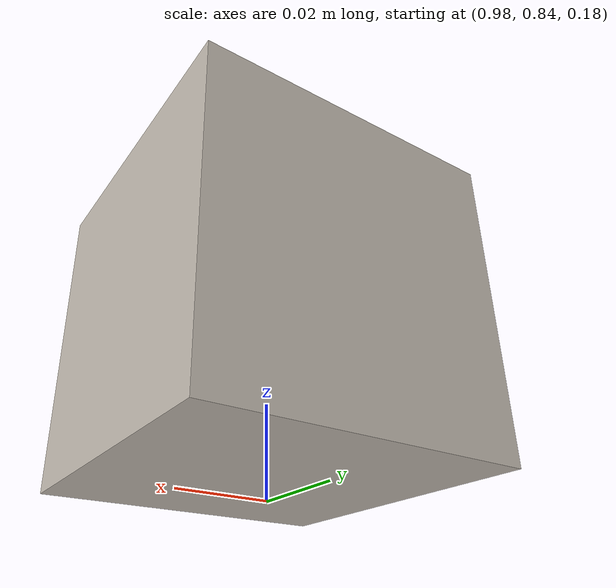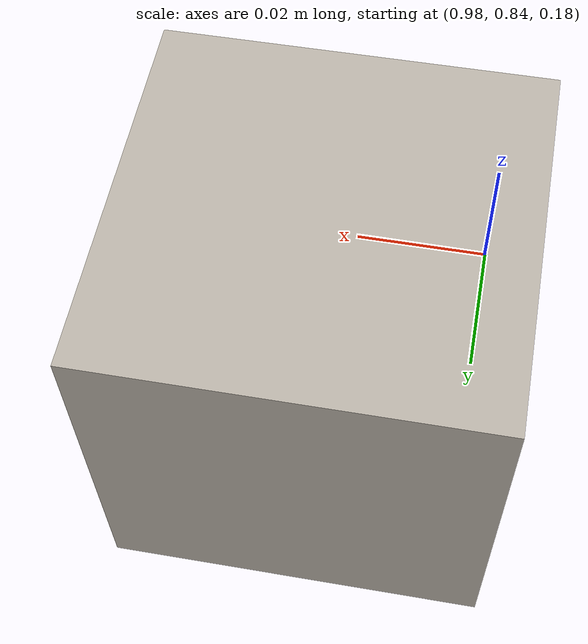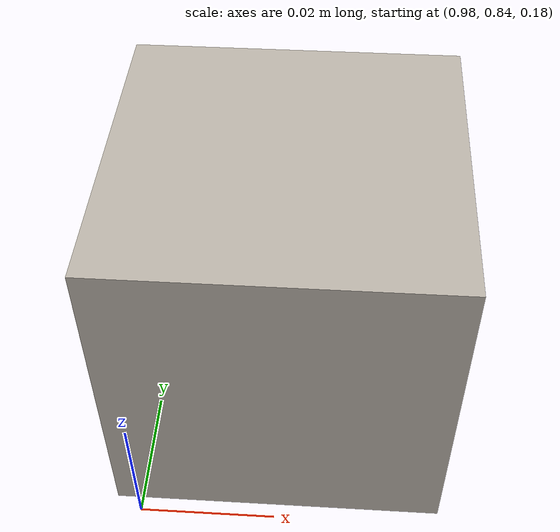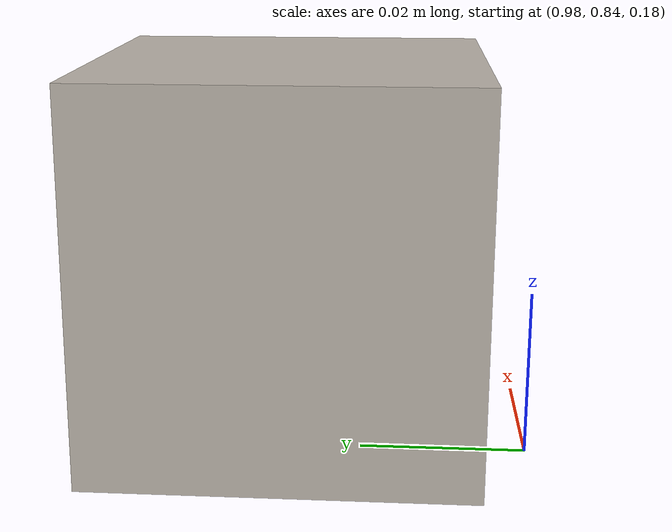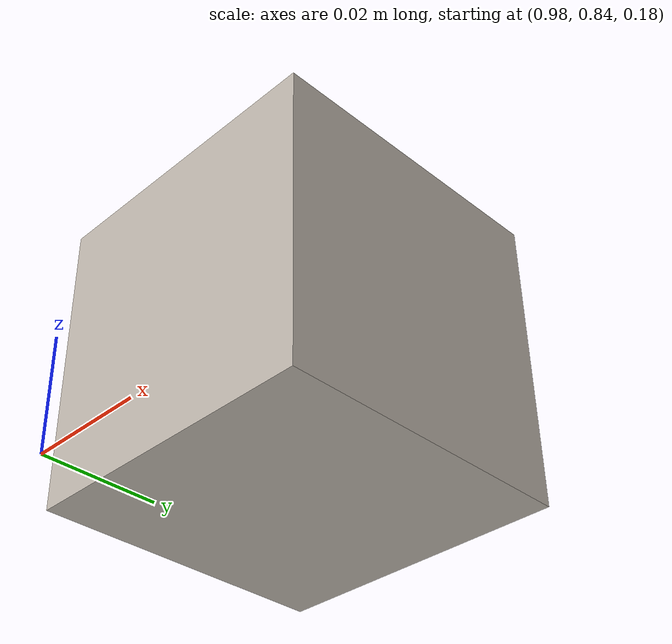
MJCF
<mujoco model="block">
    <compiler texturedir="../textures"></compiler>

    <asset>
        <texture name="texgeom" type="cube" builtin="flat" mark="cross" width="127" height="127" rgb1="0.3 0.6 0.5" rgb2="0.3 0.6 0.5" markrgb="0 0 0" random="0.01"></texture>

        <texture name="texture:object" file="block.png" gridsize="3 4" gridlayout=".U..LFRB.D.."></texture>
        <texture name="texture:hidden" file="block_hidden.png" gridsize="3 4" gridlayout=".U..LFRB.D.."></texture>

        <material name="object" texture="texgeom" texuniform="false"></material>
        <material name="material:object" texture="texture:object" specular="1" shininess="0.3" reflectance="0"></material>
        <material name="material:hidden" texture="texture:hidden" specular="1" shininess="0.3" reflectance="0"></material>
        <material name="material:target" texture="texture:object" specular="1" shininess="0.3" reflectance="0" rgba="1 1 1 0.5"></material>
    </asset>

    <worldbody>
        <body pos="1 0.87 0.2">
            <joint type="free" damping="0" name="object:joint"/>
            <geom name="object" type="box" size="0.025 0.025 0.025" material="material:object" condim="4" density="567"></geom>
            <geom name="object_hidden" type="box" size="0.024 0.024 0.024" material="material:hidden" condim="4" contype="0" conaffinity="0" mass="0"></geom>
            <site name="object:center" pos="0 0 0" rgba="1 0 0 0" size="0.01 0.01 0.01"></site>
        </body>
    </worldbody>
</mujoco>
